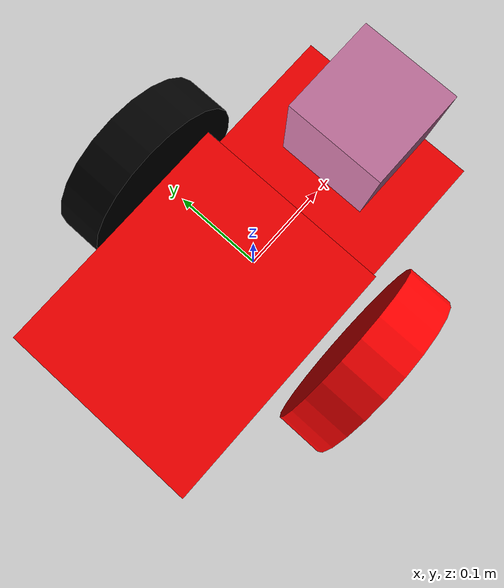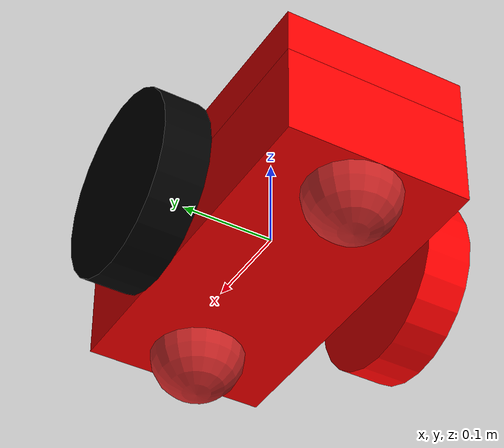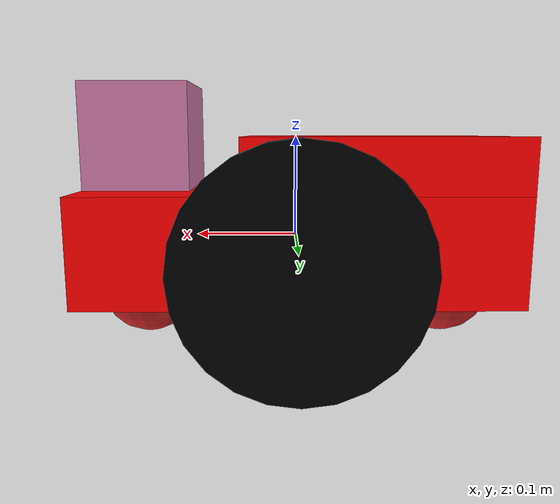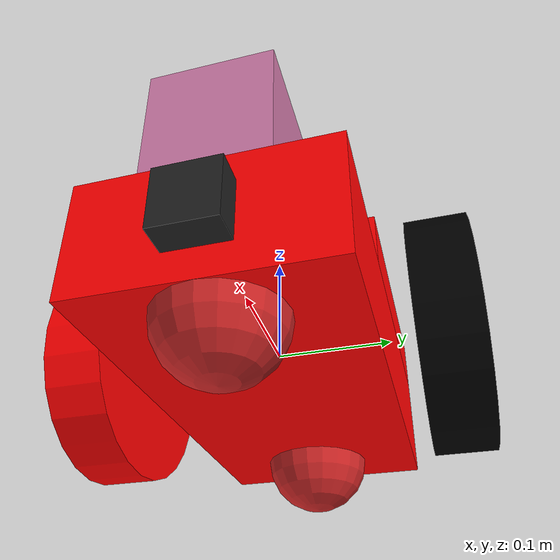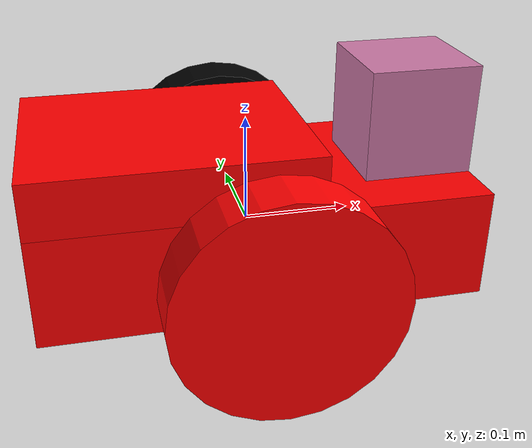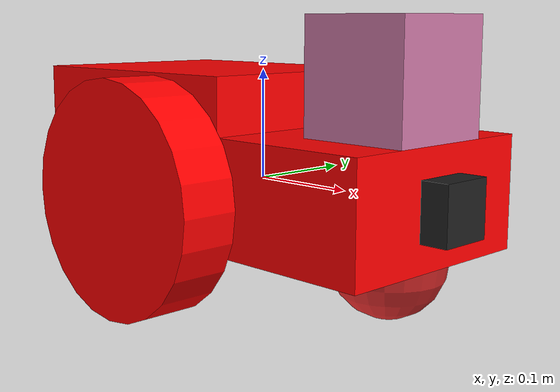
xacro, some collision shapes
<?xml version='1.0'?>
<!-- Top level tag-->
<robot name="my_robot" xmlns:xacro="http://www.ros.org/wiki/xacro">

<!-- Include the plugins-->
<xacro:include filename="$(find my_robot)/urdf/my_robot.gazebo" />

  <link name="robot_footprint"></link>

  <joint name="robot_footprint_joint" type="fixed">
    <origin xyz="0 0 0" rpy="0 0 0" />
    <parent link="robot_footprint"/>
    <child link="chassis" />
  </joint>

  <link name='chassis'>
    <pose>0 0 0.1 0 0 0</pose>

    <inertial>
      <mass value="15.0"/>
      <origin xyz="0.0 0 0" rpy=" 0 0 0"/>
      <inertia
          ixx="0.1" ixy="0" ixz="0"
          iyy="0.1" iyz="0"
          izz="0.1"
      />
    </inertial>

    <collision name='collision'>
      <origin xyz="0 0 0" rpy=" 0 0 0"/>
      <geometry>
        <box size=".4 .2 .1"/>
      </geometry>
    </collision>

    <visual name='chassis_visual'>
      <origin xyz="0 0 0" rpy=" 0 0 0"/>
      <geometry>
        <box size=".4 .2 .1"/>
      </geometry>
      <material name="Red">
        <color rgba ="1.0 0.0 0.0 0.0"/>
      </material>
    </visual>

    <collision name='back_caster_collision'>
      <origin xyz="-0.15 0 -0.05" rpy=" 0 0 0"/>
      <geometry>
        <sphere radius="0.0499"/>
      </geometry>
    </collision>

    <visual name='back_caster_visual'>
      <origin xyz="-0.15 0 -0.05" rpy=" 0 0 0"/>
      <geometry>
        <sphere radius="0.05"/>
      </geometry>
    </visual>

    <collision name='front_caster_collision'>
      <origin xyz="0.15 0 -0.05" rpy=" 0 0 0"/>
      <geometry>
        <sphere radius="0.0499"/>
      </geometry>
    </collision>

    <visual name='front_caster_visual'>
      <origin xyz="0.15 0 -0.05" rpy=" 0 0 0"/>
      <geometry>
        <sphere radius="0.05"/>
      </geometry>
    </visual>
  </link>

  <link name="upper_chassis">
    <inertial>
      <mass value="3.0"/>
      <origin xyz="0.0 0 0" rpy=" 0 0 0"/>
      <inertia
          ixx="0.1" ixy="0" ixz="0"
          iyy="0.1" iyz="0"
          izz="0.1"
      />
    </inertial>

    <collision name='collision'>
      <origin xyz="0 0 0" rpy=" 0 0 0"/>
      <geometry>
        <box size=".25 .2 .05"/>
      </geometry>
    </collision>

    <visual name='upper_chassis_visual'>
      <origin xyz="0 0 0" rpy=" 0 0 0"/>
      <geometry>
        <box size=".25 .2 .05"/>
      </geometry>
      <material name="Red">
        <color rgba ="1.0 0.0 0.0 0.0"/>
      </material>
    </visual>
  </link>

  <joint name="chassis_upper_chassis" type="fixed">
    <origin xyz="-0.075 0 0.075" rpy="0 0 0"/>
    <child link="upper_chassis"/>
    <parent link="chassis"/>
  </joint>
  <!--The wheels and their joints-->
  <link name="left_wheel">

    <visual name="left_wheel_visual">
      <origin xyz="0.0 0.0 0.0" rpy="0.0 1.5707 1.5707"/>
      <geometry>
        <cylinder length="0.05" radius="0.1"/>
      </geometry>
      <material name="Black">
        <color rgba ="0.0 0.0 0.0 0.0"/>
      </material>
    </visual>

    <collision name="left_wheel_collision">
      <origin xyz="0.0 0.0 0.0" rpy="0.0 1.5707 1.5707"/>
      <geometry>
        <cylinder length="0.05" radius="0.1"/>
      </geometry>
    </collision>

    <inertial>
      <origin xyz="0.0 0.0 0.0" rpy="0.0 1.5707 1.5707"/>
      <mass value="5"/>
      <inertia
          ixx="0.1" ixy="0" ixz="0"
          iyy="0.1" iyz="0"
          izz="0.1"
      />
    </inertial>
  </link>

  <joint type="continuous" name="left_wheel_hinge">
    <origin xyz="0 0.15 0" rpy="0 0 0"/>
    <child link="left_wheel"/>
    <parent link="chassis"/>
    <axis xyz="0 1 0" rpy="0 0 0"/>
    <limit effort="10000" velocity="1000"/>
    <dynamics damping="1.0" friction="1.0"/>
  </joint>

  <link name="right_wheel">
    <visual name="right_wheel_visual">
      <origin xyz="0.0 0.0 0.0" rpy="0.0 1.5707 1.5707"/>
      <geometry>
        <cylinder length="0.05" radius="0.1"/>
      </geometry>
      <material name="Red">
       <color rgba="1.0 0.0 0.0 0.0"/>
     </material>
    </visual>

    <collision name="right_wheel_collision">
      <origin xyz="0.0 0.0 0.0" rpy="0.0 1.5707 1.5707"/>
      <geometry>
        <cylinder length="0.05" radius="0.1"/>
      </geometry>
    </collision>

    <inertial>
      <origin xyz="0.0 0.0 0.0" rpy="0.0 1.5707 1.5707"/>
      <mass value="5"/>
      <inertia
          ixx="0.1" ixy="0" ixz="0"
          iyy="0.1" iyz="0"
          izz="0.1"
      />
    </inertial>
  </link>

  <joint type="continuous" name="right_wheel_hinge">
    <origin xyz="0 -0.15 0" rpy="0 0 0"/>
    <child link="right_wheel"/>
    <parent link="chassis"/>
    <axis xyz="0 1 0" rpy="0 0 0"/>
    <limit effort="10000" velocity="1000"/>
    <dynamics damping="1.0" friction="1.0"/>
  </joint>

  <!--The camera and its joints-->
  <link name="camera">
    <visual>
      <origin xyz="0.0 0.0 0.0" rpy="0.0 0.0 0.0"/>
      <geometry>
        <box size="0.05 0.05 0.05"/>
      </geometry>
    </visual>

    <collision>
      <origin xyz="0.0 0.0 0.0" rpy="0.0 0.0 0.0"/>
      <geometry>
        <box size="0.05 0.05 0.05"/>
      </geometry>
    </collision>

    <intertial>
      <origin xyz="0.0 0.0 0.0" rpy="0.0 0.0 0.0"/>
      <geometry>
        <box size="0.05 0.05 0.05"/>
      </geometry>
      <inertia
        ixx="1e-6" ixy="0" ixz="0"
        iyy="1e-6" iyz="0"
        izz="1e-6"
      />
    </intertial>
  </link>

  <joint name="camera_joint" type="fixed">
    <origin xyz="0.2 0.0 0.0" rpy="0.0 0.0 0.0"/>
    <axis xyz="0 1 0" rpy="0.0 0.0 0.0"/>
    <parent link="chassis"/>
    <child link="camera"/>
  </joint>

  <link name="hokuyo">
    <visual>
      <origin xyz="0.0 0.0 0.0" rpy="0.0 0.0 0.0"/>
      <geometry>
        <mesh filename="package://my_robot/meshes/hokuyo.dae"/>
      </geometry>
    </visual>

    <collision>
      <origin xyz="0.0 0.0 0.0" rpy="0.0 0.0 0.0"/>
      <geometry>
        <box size="0.1 0.1 0.1"/>
      </geometry>
    </collision>

    <inertial>
      <origin xyz="0.0 0.0 0.0" rpy="0.0 0.0 0.0"/>
      <mass value="1e-5"/>
      <inertia
        ixx="1e-6" ixy="0.0" ixz="0.0"
        iyy="1e-6" iyz="0.0"
        izz="1e-6"
      />
    </inertial>
  </link>

  <joint name="hokuyo_joint" type="fixed">
    <origin xyz="0.15 0 0.1" rpy="0.0 0.0 0.0"/>
    <axis xyz="0.0 1.0 0.0" rpy="0.0 0.0 0.0"/>
    <parent link="chassis"/>
    <child link="hokuyo"/>
  </joint>
  <!--Coloring-->
  <!--Chassis-->
  <gazebo reference="chassis">
    <material>Gazebo/Red</material>
  </gazebo>

  <gazebo reference="upper_chassis">
    <material>Gazebo/Red</material>
  </gazebo>

  <!--Wheels-->
  <gazebo reference="right_wheel">
    <material>Gazebo/Black</material>
  </gazebo>

  <gazebo reference="left_wheel">
    <material>Gazebo/Black</material>
  </gazebo>

  <gazebo reference="camera">
    <material>Gazebo/Black</material>
  </gazebo>

</robot>
